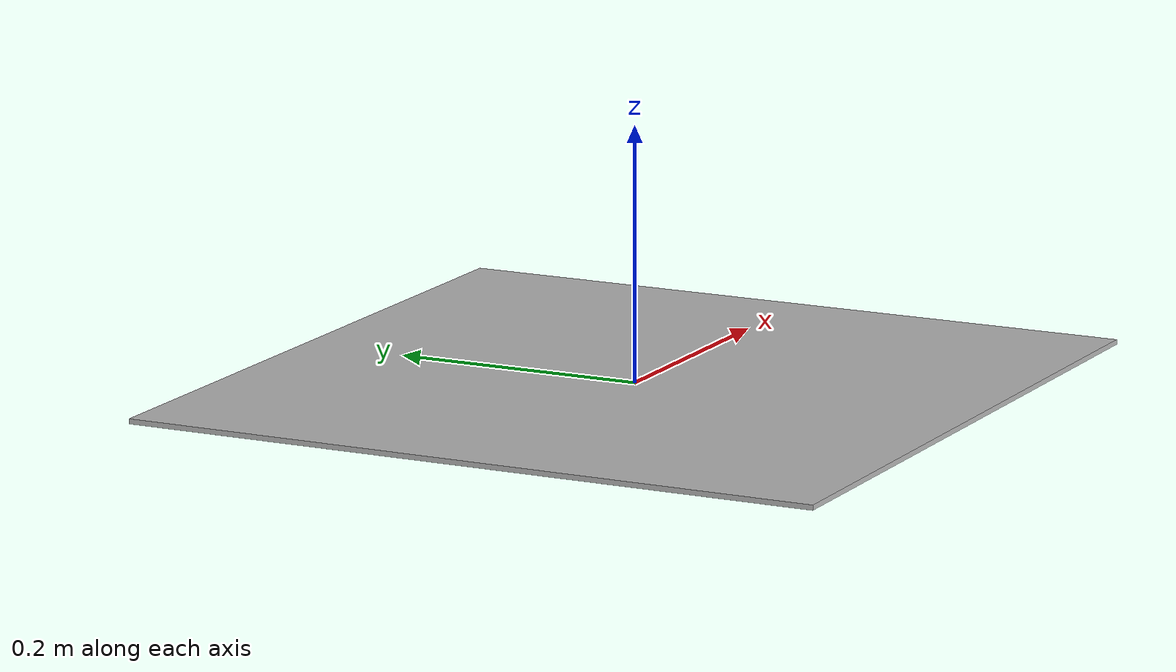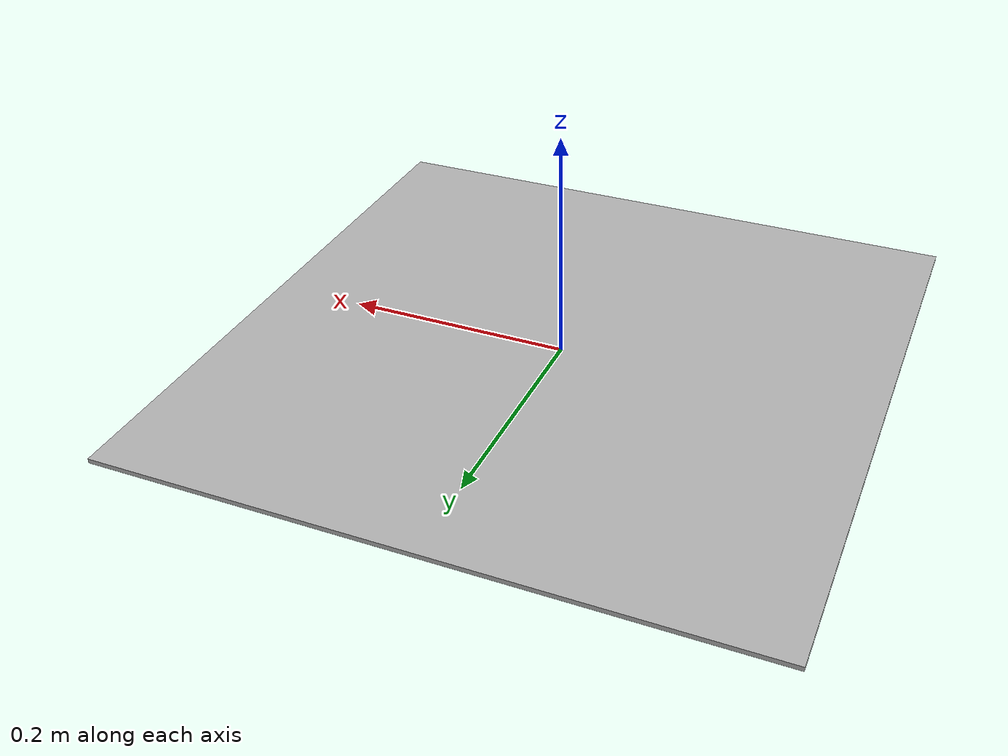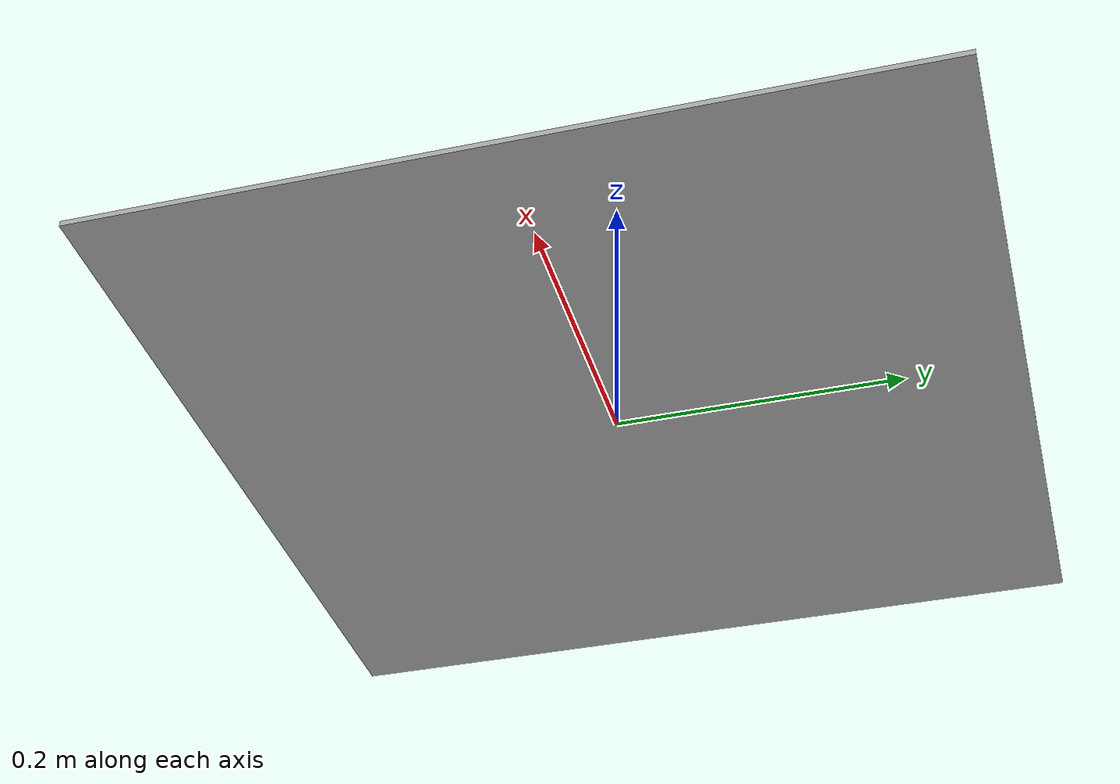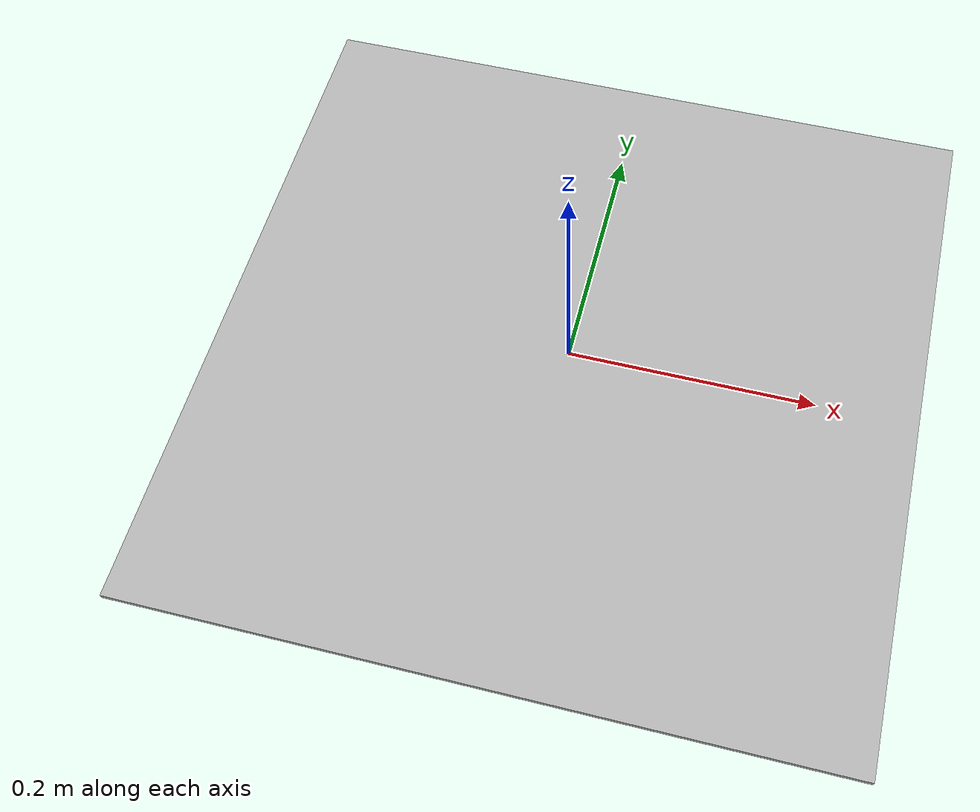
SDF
<?xml version='1.0'?>
<sdf version="1.4">
<model name="toio_mat">
  <pose>0 0 0.002 0 0 0</pose>
    <link name="link">
      <inertial>
        <mass>1.0</mass>
        <inertia>
          <ixx>0.083</ixx>
          <ixy>0.0</ixy>
          <ixz>0.0</ixz>
          <iyy>0.083</iyy>
          <iyz>0.0</iyz>
          <izz>0.083</izz>
        </inertia>
      </inertial>
      <collision name="collision">
        <geometry>
          <box>
            <size>0.56 0.56 0.004</size>
          </box>
        </geometry>
      </collision>
      <visual name="visual">
        <geometry>
          <box>
            <size>0.56 0.56 0.004</size>
          </box>
        </geometry>
        <material>
          <script>
            <uri>model://toio_mat/materials/toio_texture.material</uri>
            <name>ToioTexture</name>
          </script>
        </material>
      </visual>
    </link>
  </model>
</sdf>
